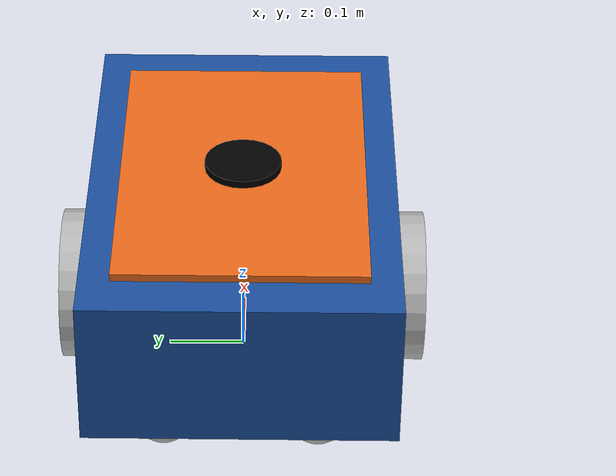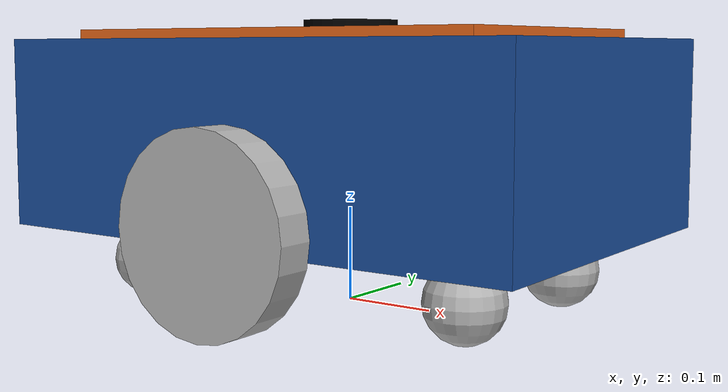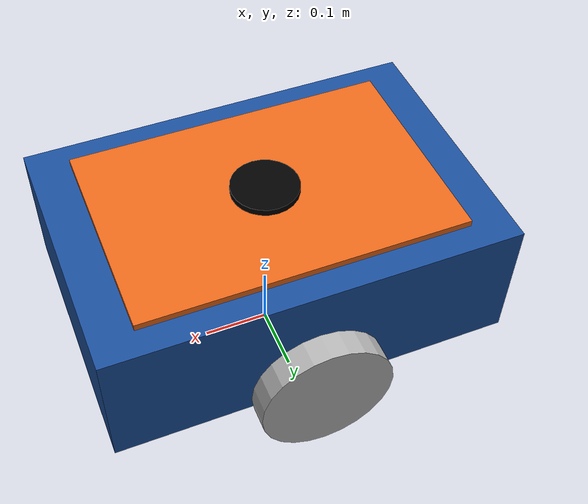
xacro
<?xml version="1.0"?>
<robot xmlns:xacro="http://www.ros.org/wiki/xacro" name="garp_amr">
    <!--
        GARP AMR - Ana Robot Modeli
        Diferansiyel Sürüşlü Otonom Mobil Robot
        (GARP için düzenlendi)
    -->

    <!-- ==================== RENK TANIMLARI ==================== -->
    <material name="garp_blue">
        <color rgba="0.1 0.3 0.6 1.0"/>
    </material>
    <material name="garp_orange">
        <color rgba="0.9 0.4 0.1 1.0"/>
    </material>
    <material name="gray">
        <color rgba="0.7 0.7 0.7 1"/>
    </material>
    <material name="black">
        <color rgba="0 0 0 1"/>
    </material>

    <!-- ==================== ŞASE PARAMETRELERİ ==================== -->
    <xacro:property name="chasis_len_x" value="0.6"/>
    <xacro:property name="chasis_len_y" value="0.4"/>
    <xacro:property name="chasis_len_z" value="0.2"/>
    <xacro:property name="base_chasis_offset" value="0.08"/>
    <xacro:property name="chasis_mass" value="2.0"/>

    <!-- ==================== XACRO INCLUDE ==================== -->
    <xacro:include filename="$(find garp_description)/urdf/wheels.urdf.xacro"/>
    <xacro:include filename="$(find garp_description)/urdf/sensors.urdf.xacro"/>
    <xacro:include filename="$(find garp_description)/urdf/gazebo_plugins.urdf.xacro"/>

    <!-- ==================== BASE LINKS ==================== -->
    <link name="base_footprint"/>

    <link name="base_link"/>

    <joint name="base_TO_footprint" type="fixed">
        <origin xyz="0.0 0.0 ${wh_radius}" rpy="0.0 0.0 0.0"/>
        <parent link="base_footprint"/>
        <child link="base_link"/>
    </joint>

    <!-- ==================== ŞASE ==================== -->
    <joint name="base_TO_chasis" type="fixed">
        <origin xyz="0.0 0.0 ${base_chasis_offset}" rpy="0.0 0.0 0.0"/>
        <parent link="base_link"/>
        <child link="chasis"/>
    </joint>

    <link name="chasis">
        <inertial>
            <mass value="${chasis_mass}"/>
            <inertia
                ixx="${chasis_mass * (chasis_len_y * chasis_len_y + chasis_len_z * chasis_len_z) / 12.0}"
                iyy="${chasis_mass * (chasis_len_x * chasis_len_x + chasis_len_z * chasis_len_z) / 12.0}"
                izz="${chasis_mass * (chasis_len_x * chasis_len_x + chasis_len_y * chasis_len_y) / 12.0}"
                ixy="0" ixz="0" iyz="0"/>
        </inertial>
        <visual>
            <geometry>
                <box size="${chasis_len_x} ${chasis_len_y} ${chasis_len_z}"/>
            </geometry>
            <material name="garp_blue"/>
        </visual>
        <collision>
            <geometry>
                <box size="${chasis_len_x} ${chasis_len_y} ${chasis_len_z}"/>
            </geometry>
        </collision>
    </link>

    <!-- ==================== ÜST KAPAK ==================== -->
    <link name="top_plate">
        <visual>
            <geometry>
                <box size="${chasis_len_x * 0.8} ${chasis_len_y * 0.8} 0.01"/>
            </geometry>
            <material name="garp_orange"/>
        </visual>
    </link>

    <joint name="chasis_TO_top_plate" type="fixed">
        <parent link="chasis"/>
        <child link="top_plate"/>
        <origin xyz="0 0 ${chasis_len_z/2 + 0.005}" rpy="0 0 0"/>
    </joint>

    <!-- ==================== TEKERLEKLERİ OLUŞTUR ==================== -->
    <xacro:create_wh postfix="l" yfact="1.0"/>
    <xacro:create_wh postfix="r" yfact="-1.0"/>

    <!-- ==================== CASTER TEKERLEKLER (4 KÖŞE) ==================== -->
    <xacro:create_cwh postfix="lf" xfact="1.0" yfact="1.0"/>
    <xacro:create_cwh postfix="lb" xfact="-1.0" yfact="1.0"/>
    <xacro:create_cwh postfix="rf" xfact="1.0" yfact="-1.0"/>
    <xacro:create_cwh postfix="rb" xfact="-1.0" yfact="-1.0"/>

</robot>

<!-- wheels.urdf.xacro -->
<robot xmlns:xacro="http://www.ros.org/wiki/xacro" name="garp_amr">
    <!--
        GARP AMR - Tekerlek Tanımları
        Tahrik ve Caster Tekerlekleri
        (GARP için düzenlendi)
    -->

    <!-- ==================== TAHRİK TEKER PARAMETRELERİ ==================== -->
    <xacro:property name="wh_radius" value="0.1"/>
    <xacro:property name="wh_thick" value="0.04"/>
    <xacro:property name="wh_chasis_gap" value="0.001"/>
    <xacro:property name="wh_mass" value="1.0"/>

    <!-- ==================== AVARE TEKER PARAMETRELERİ ==================== -->
    <xacro:property name="cwh_chasis_offset_xy" value="0.1"/>
    <!-- Yarıçap dinamik hesaplanıyor: zemine tam değecek şekilde -->
    <xacro:property name="cwh_radius" value="${(wh_radius - (chasis_len_z / 2.0 - base_chasis_offset)) / 2.0}"/>
    <xacro:property name="cwh_mass" value="0.00001"/>

    <!-- ==================== TAHRİK TEKERLEĞİ MAKROSU ==================== -->
    <xacro:macro name="create_wh" params="postfix yfact">

        <joint name="base_TO_wh_${postfix}" type="continuous">
            <origin xyz="0.0 ${yfact * (chasis_len_y / 2.0 + wh_thick / 2.0 + wh_chasis_gap)} 0.0" rpy="0.0 0.0 0.0"/>
            <parent link="base_link"/>
            <child link="wh_${postfix}"/>
            <axis xyz="0.0 1.0 0.0"/>
        </joint>

        <link name="wh_${postfix}">
            <inertial>
                <origin xyz="0.0 0.0 0.0" rpy="${pi / 2.0} 0.0 0.0"/>
                <mass value="${wh_mass}"/>
                <inertia
                    ixx="${wh_mass * (3*wh_radius*wh_radius + wh_thick*wh_thick) / 12.0}"
                    iyy="${wh_mass * (3*wh_radius*wh_radius + wh_thick*wh_thick) / 12.0}"
                    izz="${wh_mass * (wh_radius*wh_radius) / 2.0}"
                    ixy="0" ixz="0" iyz="0"/>
            </inertial>

            <visual>
                <origin xyz="0.0 0.0 0.0" rpy="${pi / 2.0} 0.0 0.0"/>
                <geometry>
                    <cylinder radius="${wh_radius}" length="${wh_thick}"/>
                </geometry>
                <material name="gray"/>
            </visual>

            <collision>
                <origin xyz="0.0 0.0 0.0" rpy="${pi / 2.0} 0.0 0.0"/>
                <geometry>
                    <cylinder radius="${wh_radius}" length="${wh_thick}"/>
                </geometry>
            </collision>
        </link>

        <!-- Tahrik tekerleği için yüksek sürtünme -->
        <gazebo reference="wh_${postfix}">
            <mu1>1.0</mu1>
            <mu2>1.0</mu2>
            <kp>1000000.0</kp>
            <kd>100.0</kd>
        </gazebo>

    </xacro:macro>

    <!-- ==================== AVARE TEKER MAKROSU ==================== -->
    <xacro:macro name="create_cwh" params="postfix xfact yfact">

        <joint name="chasis_TO_cwh_${postfix}" type="fixed">
            <origin xyz="${xfact * (chasis_len_x / 2.0 - cwh_chasis_offset_xy)}
                        ${yfact * (chasis_len_y / 2.0 - cwh_chasis_offset_xy)}
                        ${-1 * (chasis_len_z / 2.0 + cwh_radius)}" rpy="0 0 0"/>
            <parent link="chasis"/>
            <child link="cwh_${postfix}"/>
        </joint>

        <link name="cwh_${postfix}">
            <inertial>
                <mass value="0.01"/>
                <origin xyz="0 0 0"/>
                <inertia
                    ixx="1e-5" ixy="0" ixz="0"
                    iyy="1e-5" iyz="0"
                    izz="1e-5"/>
            </inertial>

            <visual>
                <origin xyz="0 0 0" rpy="0 0 0"/>
                <geometry>
                    <sphere radius="${cwh_radius}"/>
                </geometry>
                <material name="gray"/>
            </visual>

            <collision>
                <origin xyz="0 0 0" rpy="0 0 0"/>
                <geometry>
                    <sphere radius="${cwh_radius}"/>
                </geometry>
            </collision>
        </link>

        <!-- Caster için çok düşük sürtünme (kaymalı) -->
        <gazebo reference="cwh_${postfix}">
            <collision>
                <surface>
                    <friction>
                        <ode>
                            <mu>0.001</mu>
                            <mu2>0.001</mu2>
                            <slip1>1.0</slip1>
                            <slip2>1.0</slip2>
                        </ode>
                    </friction>
                    <bounce>
                        <restitution_coefficient>0.0</restitution_coefficient>
                    </bounce>
                </surface>
            </collision>
        </gazebo>

    </xacro:macro>

</robot>

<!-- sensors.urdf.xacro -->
<robot xmlns:xacro="http://www.ros.org/wiki/xacro" name="garp_amr">
    <!--
        GARP AMR - Sensör Tanımları
        LIDAR - GARP uyumlu
    -->

    <xacro:property name="lidar_radius" value="0.05"/>
    <xacro:property name="lidar_length" value="0.02"/>

    <link name="lidar">
        <visual>
            <geometry>
                <cylinder radius="${lidar_radius}" length="${lidar_length}"/>
            </geometry>
            <material name="black"/>
        </visual>
        <collision>
            <geometry>
                <cylinder radius="${lidar_radius}" length="${lidar_length}"/>
            </geometry>
        </collision>
    </link>

    <joint name="chasis_TO_lidar" type="fixed">
        <parent link="chasis"/>
        <child link="lidar"/>
        <origin xyz="0 0 ${chasis_len_z / 2.0 + lidar_length / 2.0}" rpy="0 0 0"/>
    </joint>

    <gazebo reference="lidar">
        <sensor name="gpu_lidar" type="gpu_lidar">
            <pose>0 0 0 0 0 0</pose>
            <topic>lidar/scan</topic>
            <update_rate>10</update_rate>
            <ray>
                <scan>
                    <horizontal>
                        <samples>640</samples>
                        <resolution>1</resolution>
                        <min_angle>-1.57</min_angle>
                        <max_angle>1.57</max_angle>
                    </horizontal>
                </scan>
                <range>
                    <min>0.08</min>
                    <max>15.0</max>
                    <resolution>0.01</resolution>
                </range>
            </ray>
            <always_on>true</always_on>
            <visualize>true</visualize>
            <gz_frame_id>lidar</gz_frame_id>
        </sensor>
    </gazebo>

</robot>
